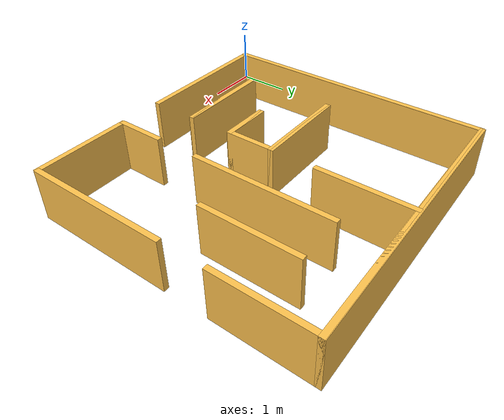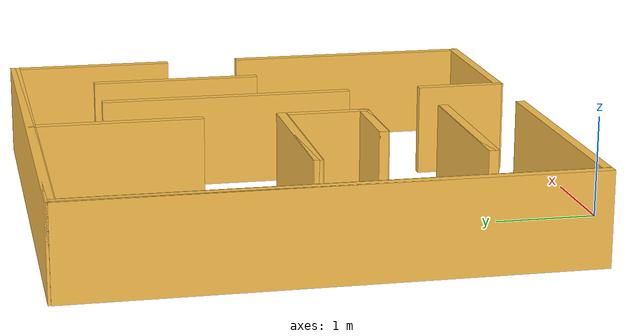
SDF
<sdf version="1.5">
 <model name="maze_test">
  <link name="Wall_0">
   <visual name="Wall_0_Visual">
    <pose>2.5949999999999998 5.28 0 0 0 0</pose>
    <geometry><box><size>5.47 0.1 1</size></box></geometry>
    <material>
     <script><uri>file://media/materials/scripts/gazebo.material</uri><name>Gazebo/Grey</name></script>
     <ambient>1 0.764706 0.305882 1</ambient>
     <diffuse>0.7 0.7 0.7 1</diffuse>
     <specular>0.01 0.01 0.01 1</specular>
     <emissive>0 0 0 1</emissive>
     <shader type="pixel"/>
    </material>
   </visual>
   <collision name="Wall_0_Collision">
    <pose>2.5949999999999998 5.28 0 0 0 0</pose>
    <geometry><box><size>5.47 0.1 1</size></box></geometry>
    <surface>
     <friction><ode><mu>1</mu><mu2>1</mu2><fdir1>0 0 0</fdir1><slip1>0</slip1><slip2>0</slip2></ode></friction>
     <bounce><restitution_coefficient>0</restitution_coefficient><threshold>1e+06</threshold></bounce>
     <contact>
      <collide_without_contact>0</collide_without_contact>
      <collide_without_contact_bitmask>1</collide_without_contact_bitmask>
      <collide_bitmask>1</collide_bitmask>
      <ode>
       <soft_cfm>0</soft_cfm>
       <soft_erp>0.2</soft_erp>
       <kp>1e+13</kp>
       <kd>1</kd>
       <max_vel>0.01</max_vel>
       <min_depth>0</min_depth>
      </ode>
      <bullet>
       <split_impulse>1</split_impulse>
       <split_impulse_penetration_threshold>-0.01</split_impulse_penetration_threshold>
       <soft_cfm>0</soft_cfm>
       <soft_erp>0.2</soft_erp>
       <kp>1e+13</kp>
       <kd>1</kd>
      </bullet>
     </contact>
    </surface>
   </collision>
  </link>
  <link name="Wall_1">
   <visual name="Wall_1_Visual">
    <pose>4.390000000000001 -0.1 0 0 0 0</pose>
    <geometry><box><size>1.88 0.1 1</size></box></geometry>
    <material>
     <script><uri>file://media/materials/scripts/gazebo.material</uri><name>Gazebo/Grey</name></script>
     <ambient>1 0.764706 0.305882 1</ambient>
     <diffuse>0.7 0.7 0.7 1</diffuse>
     <specular>0.01 0.01 0.01 1</specular>
     <emissive>0 0 0 1</emissive>
     <shader type="pixel"/>
    </material>
   </visual>
   <collision name="Wall_1_Collision">
    <pose>4.390000000000001 -0.1 0 0 0 0</pose>
    <geometry><box><size>1.88 0.1 1</size></box></geometry>
    <surface>
     <friction><ode><mu>1</mu><mu2>1</mu2><fdir1>0 0 0</fdir1><slip1>0</slip1><slip2>0</slip2></ode></friction>
     <bounce><restitution_coefficient>0</restitution_coefficient><threshold>1e+06</threshold></bounce>
     <contact>
      <collide_without_contact>0</collide_without_contact>
      <collide_without_contact_bitmask>1</collide_without_contact_bitmask>
      <collide_bitmask>1</collide_bitmask>
      <ode>
       <soft_cfm>0</soft_cfm>
       <soft_erp>0.2</soft_erp>
       <kp>1e+13</kp>
       <kd>1</kd>
       <max_vel>0.01</max_vel>
       <min_depth>0</min_depth>
      </ode>
      <bullet>
       <split_impulse>1</split_impulse>
       <split_impulse_penetration_threshold>-0.01</split_impulse_penetration_threshold>
       <soft_cfm>0</soft_cfm>
       <soft_erp>0.2</soft_erp>
       <kp>1e+13</kp>
       <kd>1</kd>
      </bullet>
     </contact>
    </surface>
   </collision>
  </link>
  <link name="Wall_2">
   <visual name="Wall_2_Visual">
    <pose>5.29 1.2550000000000001 0 0 0 0</pose>
    <geometry><box><size>0.1 2.7700000000000005 1</size></box></geometry>
    <material>
     <script><uri>file://media/materials/scripts/gazebo.material</uri><name>Gazebo/Grey</name></script>
     <ambient>1 0.764706 0.305882 1</ambient>
     <diffuse>0.7 0.7 0.7 1</diffuse>
     <specular>0.01 0.01 0.01 1</specular>
     <emissive>0 0 0 1</emissive>
     <shader type="pixel"/>
    </material>
   </visual>
   <collision name="Wall_2_Collision">
    <pose>5.29 1.2550000000000001 0 0 0 0</pose>
    <geometry><box><size>0.1 2.7700000000000005 1</size></box></geometry>
    <surface>
     <friction><ode><mu>1</mu><mu2>1</mu2><fdir1>0 0 0</fdir1><slip1>0</slip1><slip2>0</slip2></ode></friction>
     <bounce><restitution_coefficient>0</restitution_coefficient><threshold>1e+06</threshold></bounce>
     <contact>
      <collide_without_contact>0</collide_without_contact>
      <collide_without_contact_bitmask>1</collide_without_contact_bitmask>
      <collide_bitmask>1</collide_bitmask>
      <ode>
       <soft_cfm>0</soft_cfm>
       <soft_erp>0.2</soft_erp>
       <kp>1e+13</kp>
       <kd>1</kd>
       <max_vel>0.01</max_vel>
       <min_depth>0</min_depth>
      </ode>
      <bullet>
       <split_impulse>1</split_impulse>
       <split_impulse_penetration_threshold>-0.01</split_impulse_penetration_threshold>
       <soft_cfm>0</soft_cfm>
       <soft_erp>0.2</soft_erp>
       <kp>1e+13</kp>
       <kd>1</kd>
      </bullet>
     </contact>
    </surface>
   </collision>
  </link>
  <link name="Wall_3">
   <visual name="Wall_3_Visual">
    <pose>-0.09000000000000001 2.5949999999999998 0 0 0 0</pose>
    <geometry><box><size>0.1 5.47 1</size></box></geometry>
    <material>
     <script><uri>file://media/materials/scripts/gazebo.material</uri><name>Gazebo/Grey</name></script>
     <ambient>1 0.764706 0.305882 1</ambient>
     <diffuse>0.7 0.7 0.7 1</diffuse>
     <specular>0.01 0.01 0.01 1</specular>
     <emissive>0 0 0 1</emissive>
     <shader type="pixel"/>
    </material>
   </visual>
   <collision name="Wall_3_Collision">
    <pose>-0.09000000000000001 2.5949999999999998 0 0 0 0</pose>
    <geometry><box><size>0.1 5.47 1</size></box></geometry>
    <surface>
     <friction><ode><mu>1</mu><mu2>1</mu2><fdir1>0 0 0</fdir1><slip1>0</slip1><slip2>0</slip2></ode></friction>
     <bounce><restitution_coefficient>0</restitution_coefficient><threshold>1e+06</threshold></bounce>
     <contact>
      <collide_without_contact>0</collide_without_contact>
      <collide_without_contact_bitmask>1</collide_without_contact_bitmask>
      <collide_bitmask>1</collide_bitmask>
      <ode>
       <soft_cfm>0</soft_cfm>
       <soft_erp>0.2</soft_erp>
       <kp>1e+13</kp>
       <kd>1</kd>
       <max_vel>0.01</max_vel>
       <min_depth>0</min_depth>
      </ode>
      <bullet>
       <split_impulse>1</split_impulse>
       <split_impulse_penetration_threshold>-0.01</split_impulse_penetration_threshold>
       <soft_cfm>0</soft_cfm>
       <soft_erp>0.2</soft_erp>
       <kp>1e+13</kp>
       <kd>1</kd>
      </bullet>
     </contact>
    </surface>
   </collision>
  </link>
  <link name="Wall_4">
   <visual name="Wall_4_Visual">
    <pose>1.25 -0.09000000000000001 0 0 0 0</pose>
    <geometry><box><size>2.7800000000000002 0.1 1</size></box></geometry>
    <material>
     <script><uri>file://media/materials/scripts/gazebo.material</uri><name>Gazebo/Grey</name></script>
     <ambient>1 0.764706 0.305882 1</ambient>
     <diffuse>0.7 0.7 0.7 1</diffuse>
     <specular>0.01 0.01 0.01 1</specular>
     <emissive>0 0 0 1</emissive>
     <shader type="pixel"/>
    </material>
   </visual>
   <collision name="Wall_4_Collision">
    <pose>1.25 -0.09000000000000001 0 0 0 0</pose>
    <geometry><box><size>2.7800000000000002 0.1 1</size></box></geometry>
    <surface>
     <friction><ode><mu>1</mu><mu2>1</mu2><fdir1>0 0 0</fdir1><slip1>0</slip1><slip2>0</slip2></ode></friction>
     <bounce><restitution_coefficient>0</restitution_coefficient><threshold>1e+06</threshold></bounce>
     <contact>
      <collide_without_contact>0</collide_without_contact>
      <collide_without_contact_bitmask>1</collide_without_contact_bitmask>
      <collide_bitmask>1</collide_bitmask>
      <ode>
       <soft_cfm>0</soft_cfm>
       <soft_erp>0.2</soft_erp>
       <kp>1e+13</kp>
       <kd>1</kd>
       <max_vel>0.01</max_vel>
       <min_depth>0</min_depth>
      </ode>
      <bullet>
       <split_impulse>1</split_impulse>
       <split_impulse_penetration_threshold>-0.01</split_impulse_penetration_threshold>
       <soft_cfm>0</soft_cfm>
       <soft_erp>0.2</soft_erp>
       <kp>1e+13</kp>
       <kd>1</kd>
      </bullet>
     </contact>
    </surface>
   </collision>
  </link>
  <link name="Wall_5">
   <visual name="Wall_5_Visual">
    <pose>5.28 4.4 0 0 0 0</pose>
    <geometry><box><size>0.1 1.8599999999999999 1</size></box></geometry>
    <material>
     <script><uri>file://media/materials/scripts/gazebo.material</uri><name>Gazebo/Grey</name></script>
     <ambient>1 0.764706 0.305882 1</ambient>
     <diffuse>0.7 0.7 0.7 1</diffuse>
     <specular>0.01 0.01 0.01 1</specular>
     <emissive>0 0 0 1</emissive>
     <shader type="pixel"/>
    </material>
   </visual>
   <collision name="Wall_5_Collision">
    <pose>5.28 4.4 0 0 0 0</pose>
    <geometry><box><size>0.1 1.8599999999999999 1</size></box></geometry>
    <surface>
     <friction><ode><mu>1</mu><mu2>1</mu2><fdir1>0 0 0</fdir1><slip1>0</slip1><slip2>0</slip2></ode></friction>
     <bounce><restitution_coefficient>0</restitution_coefficient><threshold>1e+06</threshold></bounce>
     <contact>
      <collide_without_contact>0</collide_without_contact>
      <collide_without_contact_bitmask>1</collide_without_contact_bitmask>
      <collide_bitmask>1</collide_bitmask>
      <ode>
       <soft_cfm>0</soft_cfm>
       <soft_erp>0.2</soft_erp>
       <kp>1e+13</kp>
       <kd>1</kd>
       <max_vel>0.01</max_vel>
       <min_depth>0</min_depth>
      </ode>
      <bullet>
       <split_impulse>1</split_impulse>
       <split_impulse_penetration_threshold>-0.01</split_impulse_penetration_threshold>
       <soft_cfm>0</soft_cfm>
       <soft_erp>0.2</soft_erp>
       <kp>1e+13</kp>
       <kd>1</kd>
      </bullet>
     </contact>
    </surface>
   </collision>
  </link>
  <link name="Wall_6">
   <visual name="Wall_6_Visual">
    <pose>2.5949999999999998 5.29 0 0 0 0</pose>
    <geometry><box><size>5.47 0.1 1</size></box></geometry>
    <material>
     <script><uri>file://media/materials/scripts/gazebo.material</uri><name>Gazebo/Grey</name></script>
     <ambient>1 0.764706 0.305882 1</ambient>
     <diffuse>0.7 0.7 0.7 1</diffuse>
     <specular>0.01 0.01 0.01 1</specular>
     <emissive>0 0 0 1</emissive>
     <shader type="pixel"/>
    </material>
   </visual>
   <collision name="Wall_6_Collision">
    <pose>2.5949999999999998 5.29 0 0 0 0</pose>
    <geometry><box><size>5.47 0.1 1</size></box></geometry>
    <surface>
     <friction><ode><mu>1</mu><mu2>1</mu2><fdir1>0 0 0</fdir1><slip1>0</slip1><slip2>0</slip2></ode></friction>
     <bounce><restitution_coefficient>0</restitution_coefficient><threshold>1e+06</threshold></bounce>
     <contact>
      <collide_without_contact>0</collide_without_contact>
      <collide_without_contact_bitmask>1</collide_without_contact_bitmask>
      <collide_bitmask>1</collide_bitmask>
      <ode>
       <soft_cfm>0</soft_cfm>
       <soft_erp>0.2</soft_erp>
       <kp>1e+13</kp>
       <kd>1</kd>
       <max_vel>0.01</max_vel>
       <min_depth>0</min_depth>
      </ode>
      <bullet>
       <split_impulse>1</split_impulse>
       <split_impulse_penetration_threshold>-0.01</split_impulse_penetration_threshold>
       <soft_cfm>0</soft_cfm>
       <soft_erp>0.2</soft_erp>
       <kp>1e+13</kp>
       <kd>1</kd>
      </bullet>
     </contact>
    </surface>
   </collision>
  </link>
  <link name="Wall_7">
   <visual name="Wall_7_Visual">
    <pose>2.59 2.145 0 0 0 0</pose>
    <geometry><box><size>0.1 0.9900000000000001 1</size></box></geometry>
    <material>
     <script><uri>file://media/materials/scripts/gazebo.material</uri><name>Gazebo/Grey</name></script>
     <ambient>1 0.764706 0.305882 1</ambient>
     <diffuse>0.7 0.7 0.7 1</diffuse>
     <specular>0.01 0.01 0.01 1</specular>
     <emissive>0 0 0 1</emissive>
     <shader type="pixel"/>
    </material>
   </visual>
   <collision name="Wall_7_Collision">
    <pose>2.59 2.145 0 0 0 0</pose>
    <geometry><box><size>0.1 0.9900000000000001 1</size></box></geometry>
    <surface>
     <friction><ode><mu>1</mu><mu2>1</mu2><fdir1>0 0 0</fdir1><slip1>0</slip1><slip2>0</slip2></ode></friction>
     <bounce><restitution_coefficient>0</restitution_coefficient><threshold>1e+06</threshold></bounce>
     <contact>
      <collide_without_contact>0</collide_without_contact>
      <collide_without_contact_bitmask>1</collide_without_contact_bitmask>
      <collide_bitmask>1</collide_bitmask>
      <ode>
       <soft_cfm>0</soft_cfm>
       <soft_erp>0.2</soft_erp>
       <kp>1e+13</kp>
       <kd>1</kd>
       <max_vel>0.01</max_vel>
       <min_depth>0</min_depth>
      </ode>
      <bullet>
       <split_impulse>1</split_impulse>
       <split_impulse_penetration_threshold>-0.01</split_impulse_penetration_threshold>
       <soft_cfm>0</soft_cfm>
       <soft_erp>0.2</soft_erp>
       <kp>1e+13</kp>
       <kd>1</kd>
      </bullet>
     </contact>
    </surface>
   </collision>
  </link>
  <link name="Wall_8">
   <visual name="Wall_8_Visual">
    <pose>-0.1 2.585 0 0 0 0</pose>
    <geometry><box><size>0.1 5.45 1</size></box></geometry>
    <material>
     <script><uri>file://media/materials/scripts/gazebo.material</uri><name>Gazebo/Grey</name></script>
     <ambient>1 0.764706 0.305882 1</ambient>
     <diffuse>0.7 0.7 0.7 1</diffuse>
     <specular>0.01 0.01 0.01 1</specular>
     <emissive>0 0 0 1</emissive>
     <shader type="pixel"/>
    </material>
   </visual>
   <collision name="Wall_8_Collision">
    <pose>-0.1 2.585 0 0 0 0</pose>
    <geometry><box><size>0.1 5.45 1</size></box></geometry>
    <surface>
     <friction><ode><mu>1</mu><mu2>1</mu2><fdir1>0 0 0</fdir1><slip1>0</slip1><slip2>0</slip2></ode></friction>
     <bounce><restitution_coefficient>0</restitution_coefficient><threshold>1e+06</threshold></bounce>
     <contact>
      <collide_without_contact>0</collide_without_contact>
      <collide_without_contact_bitmask>1</collide_without_contact_bitmask>
      <collide_bitmask>1</collide_bitmask>
      <ode>
       <soft_cfm>0</soft_cfm>
       <soft_erp>0.2</soft_erp>
       <kp>1e+13</kp>
       <kd>1</kd>
       <max_vel>0.01</max_vel>
       <min_depth>0</min_depth>
      </ode>
      <bullet>
       <split_impulse>1</split_impulse>
       <split_impulse_penetration_threshold>-0.01</split_impulse_penetration_threshold>
       <soft_cfm>0</soft_cfm>
       <soft_erp>0.2</soft_erp>
       <kp>1e+13</kp>
       <kd>1</kd>
      </bullet>
     </contact>
    </surface>
   </collision>
  </link>
  <link name="Wall_9">
   <visual name="Wall_9_Visual">
    <pose>3.5 3.045 0 0 0 0</pose>
    <geometry><box><size>0.1 2.79 1</size></box></geometry>
    <material>
     <script><uri>file://media/materials/scripts/gazebo.material</uri><name>Gazebo/Grey</name></script>
     <ambient>1 0.764706 0.305882 1</ambient>
     <diffuse>0.7 0.7 0.7 1</diffuse>
     <specular>0.01 0.01 0.01 1</specular>
     <emissive>0 0 0 1</emissive>
     <shader type="pixel"/>
    </material>
   </visual>
   <collision name="Wall_9_Collision">
    <pose>3.5 3.045 0 0 0 0</pose>
    <geometry><box><size>0.1 2.79 1</size></box></geometry>
    <surface>
     <friction><ode><mu>1</mu><mu2>1</mu2><fdir1>0 0 0</fdir1><slip1>0</slip1><slip2>0</slip2></ode></friction>
     <bounce><restitution_coefficient>0</restitution_coefficient><threshold>1e+06</threshold></bounce>
     <contact>
      <collide_without_contact>0</collide_without_contact>
      <collide_without_contact_bitmask>1</collide_without_contact_bitmask>
      <collide_bitmask>1</collide_bitmask>
      <ode>
       <soft_cfm>0</soft_cfm>
       <soft_erp>0.2</soft_erp>
       <kp>1e+13</kp>
       <kd>1</kd>
       <max_vel>0.01</max_vel>
       <min_depth>0</min_depth>
      </ode>
      <bullet>
       <split_impulse>1</split_impulse>
       <split_impulse_penetration_threshold>-0.01</split_impulse_penetration_threshold>
       <soft_cfm>0</soft_cfm>
       <soft_erp>0.2</soft_erp>
       <kp>1e+13</kp>
       <kd>1</kd>
      </bullet>
     </contact>
    </surface>
   </collision>
  </link>
  <link name="Wall_10">
   <visual name="Wall_10_Visual">
    <pose>2.6 4.380000000000001 0 0 0 0</pose>
    <geometry><box><size>0.1 1.8600000000000003 1</size></box></geometry>
    <material>
     <script><uri>file://media/materials/scripts/gazebo.material</uri><name>Gazebo/Grey</name></script>
     <ambient>1 0.764706 0.305882 1</ambient>
     <diffuse>0.7 0.7 0.7 1</diffuse>
     <specular>0.01 0.01 0.01 1</specular>
     <emissive>0 0 0 1</emissive>
     <shader type="pixel"/>
    </material>
   </visual>
   <collision name="Wall_10_Collision">
    <pose>2.6 4.380000000000001 0 0 0 0</pose>
    <geometry><box><size>0.1 1.8600000000000003 1</size></box></geometry>
    <surface>
     <friction><ode><mu>1</mu><mu2>1</mu2><fdir1>0 0 0</fdir1><slip1>0</slip1><slip2>0</slip2></ode></friction>
     <bounce><restitution_coefficient>0</restitution_coefficient><threshold>1e+06</threshold></bounce>
     <contact>
      <collide_without_contact>0</collide_without_contact>
      <collide_without_contact_bitmask>1</collide_without_contact_bitmask>
      <collide_bitmask>1</collide_bitmask>
      <ode>
       <soft_cfm>0</soft_cfm>
       <soft_erp>0.2</soft_erp>
       <kp>1e+13</kp>
       <kd>1</kd>
       <max_vel>0.01</max_vel>
       <min_depth>0</min_depth>
      </ode>
      <bullet>
       <split_impulse>1</split_impulse>
       <split_impulse_penetration_threshold>-0.01</split_impulse_penetration_threshold>
       <soft_cfm>0</soft_cfm>
       <soft_erp>0.2</soft_erp>
       <kp>1e+13</kp>
       <kd>1</kd>
      </bullet>
     </contact>
    </surface>
   </collision>
  </link>
  <link name="Wall_11">
   <visual name="Wall_11_Visual">
    <pose>3.4899999999999998 0.355 0 0 0 0</pose>
    <geometry><box><size>0.1 0.97 1</size></box></geometry>
    <material>
     <script><uri>file://media/materials/scripts/gazebo.material</uri><name>Gazebo/Grey</name></script>
     <ambient>1 0.764706 0.305882 1</ambient>
     <diffuse>0.7 0.7 0.7 1</diffuse>
     <specular>0.01 0.01 0.01 1</specular>
     <emissive>0 0 0 1</emissive>
     <shader type="pixel"/>
    </material>
   </visual>
   <collision name="Wall_11_Collision">
    <pose>3.4899999999999998 0.355 0 0 0 0</pose>
    <geometry><box><size>0.1 0.97 1</size></box></geometry>
    <surface>
     <friction><ode><mu>1</mu><mu2>1</mu2><fdir1>0 0 0</fdir1><slip1>0</slip1><slip2>0</slip2></ode></friction>
     <bounce><restitution_coefficient>0</restitution_coefficient><threshold>1e+06</threshold></bounce>
     <contact>
      <collide_without_contact>0</collide_without_contact>
      <collide_without_contact_bitmask>1</collide_without_contact_bitmask>
      <collide_bitmask>1</collide_bitmask>
      <ode>
       <soft_cfm>0</soft_cfm>
       <soft_erp>0.2</soft_erp>
       <kp>1e+13</kp>
       <kd>1</kd>
       <max_vel>0.01</max_vel>
       <min_depth>0</min_depth>
      </ode>
      <bullet>
       <split_impulse>1</split_impulse>
       <split_impulse_penetration_threshold>-0.01</split_impulse_penetration_threshold>
       <soft_cfm>0</soft_cfm>
       <soft_erp>0.2</soft_erp>
       <kp>1e+13</kp>
       <kd>1</kd>
      </bullet>
     </contact>
    </surface>
   </collision>
  </link>
  <link name="Wall_12">
   <visual name="Wall_12_Visual">
    <pose>1.6949999999999998 0.8 0 0 0 0</pose>
    <geometry><box><size>1.8900000000000001 0.1 1</size></box></geometry>
    <material>
     <script><uri>file://media/materials/scripts/gazebo.material</uri><name>Gazebo/Grey</name></script>
     <ambient>1 0.764706 0.305882 1</ambient>
     <diffuse>0.7 0.7 0.7 1</diffuse>
     <specular>0.01 0.01 0.01 1</specular>
     <emissive>0 0 0 1</emissive>
     <shader type="pixel"/>
    </material>
   </visual>
   <collision name="Wall_12_Collision">
    <pose>1.6949999999999998 0.8 0 0 0 0</pose>
    <geometry><box><size>1.8900000000000001 0.1 1</size></box></geometry>
    <surface>
     <friction><ode><mu>1</mu><mu2>1</mu2><fdir1>0 0 0</fdir1><slip1>0</slip1><slip2>0</slip2></ode></friction>
     <bounce><restitution_coefficient>0</restitution_coefficient><threshold>1e+06</threshold></bounce>
     <contact>
      <collide_without_contact>0</collide_without_contact>
      <collide_without_contact_bitmask>1</collide_without_contact_bitmask>
      <collide_bitmask>1</collide_bitmask>
      <ode>
       <soft_cfm>0</soft_cfm>
       <soft_erp>0.2</soft_erp>
       <kp>1e+13</kp>
       <kd>1</kd>
       <max_vel>0.01</max_vel>
       <min_depth>0</min_depth>
      </ode>
      <bullet>
       <split_impulse>1</split_impulse>
       <split_impulse_penetration_threshold>-0.01</split_impulse_penetration_threshold>
       <soft_cfm>0</soft_cfm>
       <soft_erp>0.2</soft_erp>
       <kp>1e+13</kp>
       <kd>1</kd>
      </bullet>
     </contact>
    </surface>
   </collision>
  </link>
  <link name="Wall_13">
   <visual name="Wall_13_Visual">
    <pose>1.6949999999999998 0.79 0 0 0 0</pose>
    <geometry><box><size>1.8900000000000001 0.1 1</size></box></geometry>
    <material>
     <script><uri>file://media/materials/scripts/gazebo.material</uri><name>Gazebo/Grey</name></script>
     <ambient>1 0.764706 0.305882 1</ambient>
     <diffuse>0.7 0.7 0.7 1</diffuse>
     <specular>0.01 0.01 0.01 1</specular>
     <emissive>0 0 0 1</emissive>
     <shader type="pixel"/>
    </material>
   </visual>
   <collision name="Wall_13_Collision">
    <pose>1.6949999999999998 0.79 0 0 0 0</pose>
    <geometry><box><size>1.8900000000000001 0.1 1</size></box></geometry>
    <surface>
     <friction><ode><mu>1</mu><mu2>1</mu2><fdir1>0 0 0</fdir1><slip1>0</slip1><slip2>0</slip2></ode></friction>
     <bounce><restitution_coefficient>0</restitution_coefficient><threshold>1e+06</threshold></bounce>
     <contact>
      <collide_without_contact>0</collide_without_contact>
      <collide_without_contact_bitmask>1</collide_without_contact_bitmask>
      <collide_bitmask>1</collide_bitmask>
      <ode>
       <soft_cfm>0</soft_cfm>
       <soft_erp>0.2</soft_erp>
       <kp>1e+13</kp>
       <kd>1</kd>
       <max_vel>0.01</max_vel>
       <min_depth>0</min_depth>
      </ode>
      <bullet>
       <split_impulse>1</split_impulse>
       <split_impulse_penetration_threshold>-0.01</split_impulse_penetration_threshold>
       <soft_cfm>0</soft_cfm>
       <soft_erp>0.2</soft_erp>
       <kp>1e+13</kp>
       <kd>1</kd>
      </bullet>
     </contact>
    </surface>
   </collision>
  </link>
  <link name="Wall_14">
   <visual name="Wall_14_Visual">
    <pose>1.6949999999999998 2.59 0 0 0 0</pose>
    <geometry><box><size>1.8900000000000001 0.1 1</size></box></geometry>
    <material>
     <script><uri>file://media/materials/scripts/gazebo.material</uri><name>Gazebo/Grey</name></script>
     <ambient>1 0.764706 0.305882 1</ambient>
     <diffuse>0.7 0.7 0.7 1</diffuse>
     <specular>0.01 0.01 0.01 1</specular>
     <emissive>0 0 0 1</emissive>
     <shader type="pixel"/>
    </material>
   </visual>
   <collision name="Wall_14_Collision">
    <pose>1.6949999999999998 2.59 0 0 0 0</pose>
    <geometry><box><size>1.8900000000000001 0.1 1</size></box></geometry>
    <surface>
     <friction><ode><mu>1</mu><mu2>1</mu2><fdir1>0 0 0</fdir1><slip1>0</slip1><slip2>0</slip2></ode></friction>
     <bounce><restitution_coefficient>0</restitution_coefficient><threshold>1e+06</threshold></bounce>
     <contact>
      <collide_without_contact>0</collide_without_contact>
      <collide_without_contact_bitmask>1</collide_without_contact_bitmask>
      <collide_bitmask>1</collide_bitmask>
      <ode>
       <soft_cfm>0</soft_cfm>
       <soft_erp>0.2</soft_erp>
       <kp>1e+13</kp>
       <kd>1</kd>
       <max_vel>0.01</max_vel>
       <min_depth>0</min_depth>
      </ode>
      <bullet>
       <split_impulse>1</split_impulse>
       <split_impulse_penetration_threshold>-0.01</split_impulse_penetration_threshold>
       <soft_cfm>0</soft_cfm>
       <soft_erp>0.2</soft_erp>
       <kp>1e+13</kp>
       <kd>1</kd>
      </bullet>
     </contact>
    </surface>
   </collision>
  </link>
  <link name="Wall_15">
   <visual name="Wall_15_Visual">
    <pose>1.6949999999999998 2.6 0 0 0 0</pose>
    <geometry><box><size>1.8900000000000001 0.1 1</size></box></geometry>
    <material>
     <script><uri>file://media/materials/scripts/gazebo.material</uri><name>Gazebo/Grey</name></script>
     <ambient>1 0.764706 0.305882 1</ambient>
     <diffuse>0.7 0.7 0.7 1</diffuse>
     <specular>0.01 0.01 0.01 1</specular>
     <emissive>0 0 0 1</emissive>
     <shader type="pixel"/>
    </material>
   </visual>
   <collision name="Wall_15_Collision">
    <pose>1.6949999999999998 2.6 0 0 0 0</pose>
    <geometry><box><size>1.8900000000000001 0.1 1</size></box></geometry>
    <surface>
     <friction><ode><mu>1</mu><mu2>1</mu2><fdir1>0 0 0</fdir1><slip1>0</slip1><slip2>0</slip2></ode></friction>
     <bounce><restitution_coefficient>0</restitution_coefficient><threshold>1e+06</threshold></bounce>
     <contact>
      <collide_without_contact>0</collide_without_contact>
      <collide_without_contact_bitmask>1</collide_without_contact_bitmask>
      <collide_bitmask>1</collide_bitmask>
      <ode>
       <soft_cfm>0</soft_cfm>
       <soft_erp>0.2</soft_erp>
       <kp>1e+13</kp>
       <kd>1</kd>
       <max_vel>0.01</max_vel>
       <min_depth>0</min_depth>
      </ode>
      <bullet>
       <split_impulse>1</split_impulse>
       <split_impulse_penetration_threshold>-0.01</split_impulse_penetration_threshold>
       <soft_cfm>0</soft_cfm>
       <soft_erp>0.2</soft_erp>
       <kp>1e+13</kp>
       <kd>1</kd>
      </bullet>
     </contact>
    </surface>
   </collision>
  </link>
  <link name="Wall_16">
   <visual name="Wall_16_Visual">
    <pose>2.155 1.7 0 0 0 0</pose>
    <geometry><box><size>0.9700000000000001 0.1 1</size></box></geometry>
    <material>
     <script><uri>file://media/materials/scripts/gazebo.material</uri><name>Gazebo/Grey</name></script>
     <ambient>1 0.764706 0.305882 1</ambient>
     <diffuse>0.7 0.7 0.7 1</diffuse>
     <specular>0.01 0.01 0.01 1</specular>
     <emissive>0 0 0 1</emissive>
     <shader type="pixel"/>
    </material>
   </visual>
   <collision name="Wall_16_Collision">
    <pose>2.155 1.7 0 0 0 0</pose>
    <geometry><box><size>0.9700000000000001 0.1 1</size></box></geometry>
    <surface>
     <friction><ode><mu>1</mu><mu2>1</mu2><fdir1>0 0 0</fdir1><slip1>0</slip1><slip2>0</slip2></ode></friction>
     <bounce><restitution_coefficient>0</restitution_coefficient><threshold>1e+06</threshold></bounce>
     <contact>
      <collide_without_contact>0</collide_without_contact>
      <collide_without_contact_bitmask>1</collide_without_contact_bitmask>
      <collide_bitmask>1</collide_bitmask>
      <ode>
       <soft_cfm>0</soft_cfm>
       <soft_erp>0.2</soft_erp>
       <kp>1e+13</kp>
       <kd>1</kd>
       <max_vel>0.01</max_vel>
       <min_depth>0</min_depth>
      </ode>
      <bullet>
       <split_impulse>1</split_impulse>
       <split_impulse_penetration_threshold>-0.01</split_impulse_penetration_threshold>
       <soft_cfm>0</soft_cfm>
       <soft_erp>0.2</soft_erp>
       <kp>1e+13</kp>
       <kd>1</kd>
      </bullet>
     </contact>
    </surface>
   </collision>
  </link>
  <link name="Wall_17">
   <visual name="Wall_17_Visual">
    <pose>2.155 1.69 0 0 0 0</pose>
    <geometry><box><size>0.9700000000000001 0.1 1</size></box></geometry>
    <material>
     <script><uri>file://media/materials/scripts/gazebo.material</uri><name>Gazebo/Grey</name></script>
     <ambient>1 0.764706 0.305882 1</ambient>
     <diffuse>0.7 0.7 0.7 1</diffuse>
     <specular>0.01 0.01 0.01 1</specular>
     <emissive>0 0 0 1</emissive>
     <shader type="pixel"/>
    </material>
   </visual>
   <collision name="Wall_17_Collision">
    <pose>2.155 1.69 0 0 0 0</pose>
    <geometry><box><size>0.9700000000000001 0.1 1</size></box></geometry>
    <surface>
     <friction><ode><mu>1</mu><mu2>1</mu2><fdir1>0 0 0</fdir1><slip1>0</slip1><slip2>0</slip2></ode></friction>
     <bounce><restitution_coefficient>0</restitution_coefficient><threshold>1e+06</threshold></bounce>
     <contact>
      <collide_without_contact>0</collide_without_contact>
      <collide_without_contact_bitmask>1</collide_without_contact_bitmask>
      <collide_bitmask>1</collide_bitmask>
      <ode>
       <soft_cfm>0</soft_cfm>
       <soft_erp>0.2</soft_erp>
       <kp>1e+13</kp>
       <kd>1</kd>
       <max_vel>0.01</max_vel>
       <min_depth>0</min_depth>
      </ode>
      <bullet>
       <split_impulse>1</split_impulse>
       <split_impulse_penetration_threshold>-0.01</split_impulse_penetration_threshold>
       <soft_cfm>0</soft_cfm>
       <soft_erp>0.2</soft_erp>
       <kp>1e+13</kp>
       <kd>1</kd>
      </bullet>
     </contact>
    </surface>
   </collision>
  </link>
  <link name="Wall_18">
   <visual name="Wall_18_Visual">
    <pose>4.390000000000001 3.4949999999999997 0 0 0 0</pose>
    <geometry><box><size>0.1 1.8900000000000001 1</size></box></geometry>
    <material>
     <script><uri>file://media/materials/scripts/gazebo.material</uri><name>Gazebo/Grey</name></script>
     <ambient>1 0.764706 0.305882 1</ambient>
     <diffuse>0.7 0.7 0.7 1</diffuse>
     <specular>0.01 0.01 0.01 1</specular>
     <emissive>0 0 0 1</emissive>
     <shader type="pixel"/>
    </material>
   </visual>
   <collision name="Wall_18_Collision">
    <pose>4.390000000000001 3.4949999999999997 0 0 0 0</pose>
    <geometry><box><size>0.1 1.8900000000000001 1</size></box></geometry>
    <surface>
     <friction><ode><mu>1</mu><mu2>1</mu2><fdir1>0 0 0</fdir1><slip1>0</slip1><slip2>0</slip2></ode></friction>
     <bounce><restitution_coefficient>0</restitution_coefficient><threshold>1e+06</threshold></bounce>
     <contact>
      <collide_without_contact>0</collide_without_contact>
      <collide_without_contact_bitmask>1</collide_without_contact_bitmask>
      <collide_bitmask>1</collide_bitmask>
      <ode>
       <soft_cfm>0</soft_cfm>
       <soft_erp>0.2</soft_erp>
       <kp>1e+13</kp>
       <kd>1</kd>
       <max_vel>0.01</max_vel>
       <min_depth>0</min_depth>
      </ode>
      <bullet>
       <split_impulse>1</split_impulse>
       <split_impulse_penetration_threshold>-0.01</split_impulse_penetration_threshold>
       <soft_cfm>0</soft_cfm>
       <soft_erp>0.2</soft_erp>
       <kp>1e+13</kp>
       <kd>1</kd>
      </bullet>
     </contact>
    </surface>
   </collision>
  </link>
  <static>1</static>
 </model>
</sdf>
